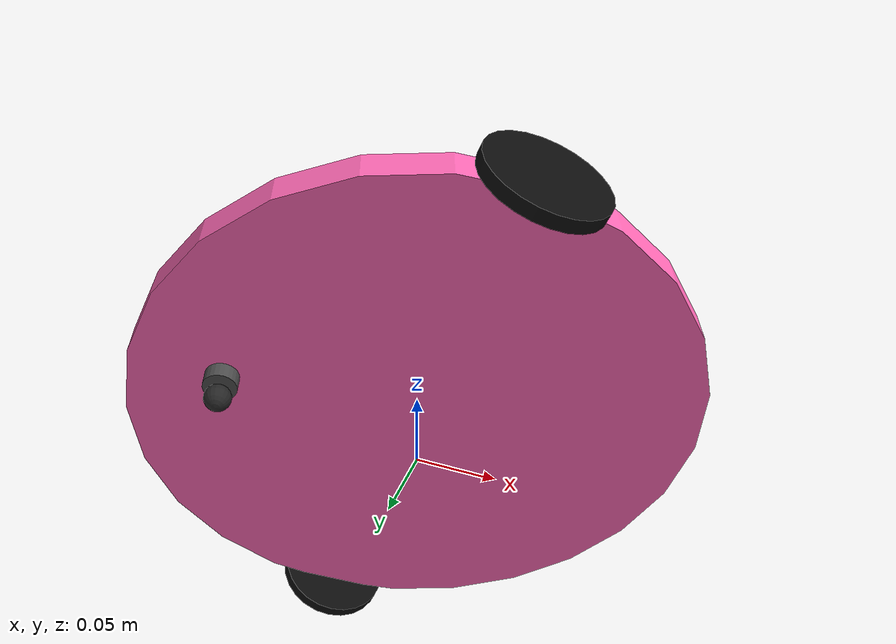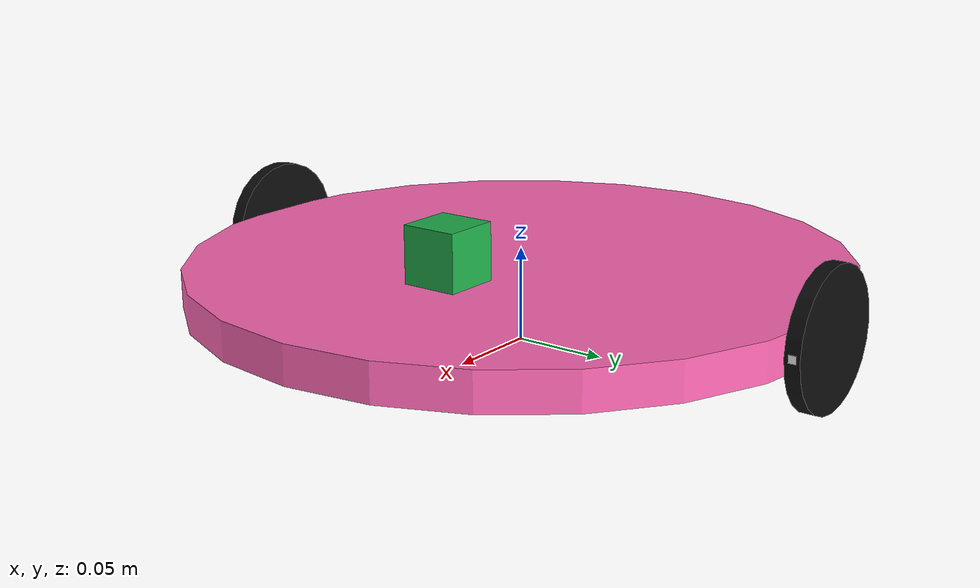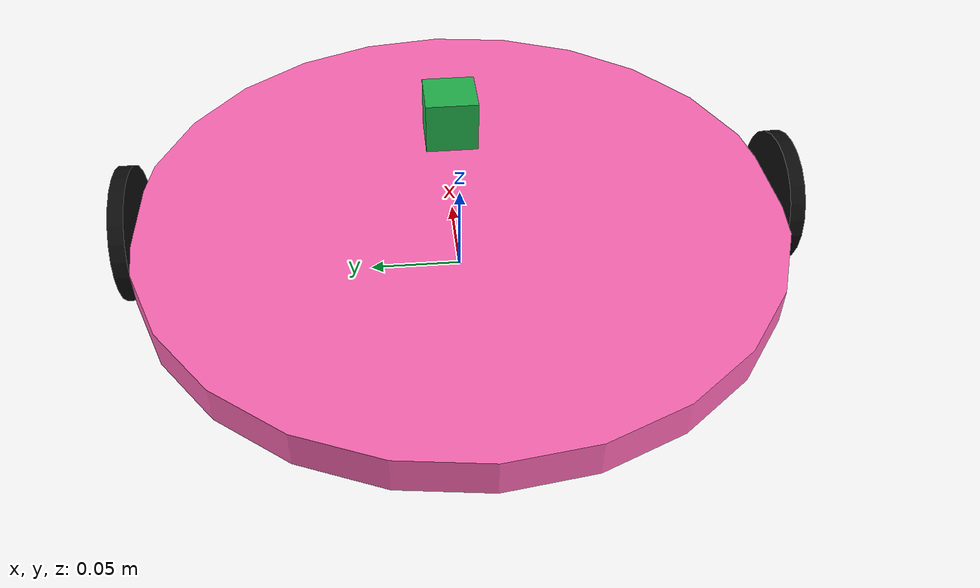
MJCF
<mujoco model="my_robot">

  <worldbody>
    <!-- Ground plane removed for Task 4: dr_mujoco provides its own floor (defining it twice crashes MuJoCo). -->
    <light diffuse=".5 .5 .5" pos="0 0 3" dir="0 0 -1"/>
    <light directional="true" pos="0 0 10" dir="-0.5 0.1 -0.9" diffuse="0.8 0.8 0.8" specular="0.2 0.2 0.2" castshadow="true"/>

    <body name="base_body" pos="0 0 0.036">
      <joint type="free"/>
      <!-- solid cylinder r=0.174, h=0.02, m=0.2 -->
      <inertial pos="0 0 0" mass="0.2" diaginertia="1.52047e-3 1.52047e-3 3.0276e-3"/>
      <geom group="1" contype="0" conaffinity="0" type="cylinder" size="0.174 0.01" rgba="1 0.41 0.71 1"/>
      <geom group="3" rgba="1 0.5 0 0.4" type="cylinder" size="0.174 0.01"/>

      <body name="head" pos="0.06 0 0.025">
        <!-- solid cube a=0.03, m=0.02 -->
        <inertial pos="0 0 0" mass="0.02" diaginertia="3e-6 3e-6 3e-6"/>
        <geom group="1" contype="0" conaffinity="0" type="box" size="0.015 0.015 0.015" rgba="0.13 0.7 0.3 1"/>
        <geom group="3" rgba="1 0.5 0 0.4" type="box" size="0.015 0.015 0.015"/>
      </body>

      <body name="left_wheel" pos="0 0.175 0">
        <joint name="base_to_left_wheel" type="hinge" axis="0 1 0" frictionloss="0.02" armature="0.001"/>
        <!-- solid cylinder r=0.036, h=0.008, m=0.025; z-symmetric inertia rotated like the geom -->
        <inertial pos="0 0 0" euler="-90 0 0" mass="0.025" diaginertia="8.233e-6 8.233e-6 1.62e-5"/>
        <geom name="left_wheel_geom" group="1" contype="0" conaffinity="0" type="cylinder" size="0.036 0.004" euler="-90 0 0" rgba="0.05 0.05 0.05 1"/>
        <geom group="3" rgba="1 0.5 0 0.4" type="cylinder" size="0.036 0.004" euler="-90 0 0"/>
        <geom group="1" contype="0" conaffinity="0" type="box" size="0.018 0.002 0.002" pos="0.018 0 0" rgba="1 1 1 1"/>
      </body>

      <!-- Right wheel axis is -Y (mirror of the left): dr_mujoco commands the right wheel with the
           opposite sign, so a negative command must roll it forward. -->
      <body name="right_wheel" pos="0 -0.175 0">
        <joint name="base_to_right_wheel" type="hinge" axis="0 -1 0" frictionloss="0.02" armature="0.001"/>
        <inertial pos="0 0 0" euler="-90 0 0" mass="0.025" diaginertia="8.233e-6 8.233e-6 1.62e-5"/>
        <geom name="right_wheel_geom" group="1" contype="0" conaffinity="0" type="cylinder" size="0.036 0.004" euler="-90 0 0" rgba="0.05 0.05 0.05 1"/>
        <geom group="3" rgba="1 0.5 0 0.4" type="cylinder" size="0.036 0.004" euler="-90 0 0"/>
        <geom group="1" contype="0" conaffinity="0" type="box" size="0.018 0.002 0.002" pos="0.018 0 0" rgba="1 1 1 1"/>
      </body>

      <!-- swivel origin sits on the underside of the base (z = -0.01) -->
      <body name="caster_swivel" pos="-0.12 0 -0.01">
        <joint name="caster_swivel_joint" type="hinge" axis="0 0 1"/>
        <!-- solid cylinder r=0.01, h=0.01, m=0.015; geom is offset 5 mm down, so the COM is too -->
        <inertial pos="0 0 -0.005" mass="0.015" diaginertia="5e-7 5e-7 7.5e-7"/>
        <geom group="1" contype="0" conaffinity="0" type="cylinder" size="0.01 0.005" pos="0 0 -0.005" rgba="0.3 0.3 0.3 1"/>
        <geom group="3" rgba="1 0.5 0 0.4" type="cylinder" size="0.01 0.005" pos="0 0 -0.005"/>

        <body name="caster_wheel" pos="0 0 -0.018">
          <joint name="caster_wheel_joint" type="hinge" axis="0 1 0"/>
          <!-- solid sphere r=0.008, m=0.01 -->
          <inertial pos="0 0 0" mass="0.01" diaginertia="2.56e-7 2.56e-7 2.56e-7"/>
          <geom group="1" contype="0" conaffinity="0" type="sphere" size="0.008" rgba="0.15 0.15 0.15 1"/>
          <geom group="3" rgba="1 0.5 0 0.4" type="sphere" size="0.008"/>
        </body>
      </body>
    </body>
  </worldbody>

  <!-- Task 4: velocity motors on the two driven wheels.
       Names left_wheel_vel / right_wheel_vel are required by dr_mujoco's Python code. -->
  <actuator>
    <velocity name="left_wheel_vel"
              joint="base_to_left_wheel"
              kv="0.05"
              ctrllimited="true"
              ctrlrange="-10 10"/>
    <velocity name="right_wheel_vel"
              joint="base_to_right_wheel"
              kv="0.05"
              ctrllimited="true"
              ctrlrange="-10 10"/>
  </actuator>
</mujoco>
